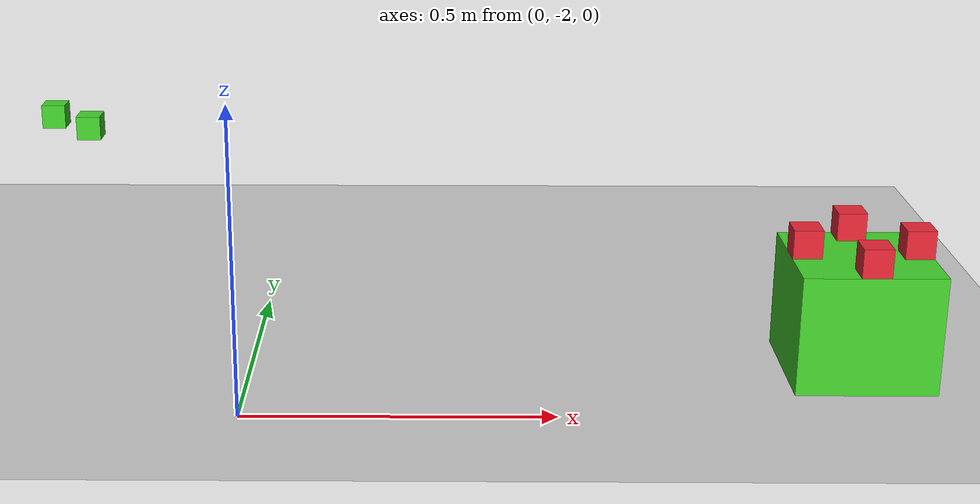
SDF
<sdf version="1.5">
 <world name="default">
  <model name="ground_plane">
   <static>1</static>
   <link name="link">
    <collision name="collision">
     <geometry><plane><normal>0 0 1</normal><size>100 100</size></plane></geometry>
     <surface><friction><ode><mu>100</mu><mu2>50</mu2></ode></friction></surface>
    </collision>
    <visual name="visual">
     <cast_shadows>0</cast_shadows>
     <geometry><plane><normal>0 0 1</normal><size>100 100</size></plane></geometry>
     <material>
      <script><uri>file://media/materials/scripts/gazebo.material</uri><name>Gazebo/Grey</name></script>
     </material>
    </visual>
   </link>
  </model>
  <model name="green_climate">
   <link name="link_0">
    <inertial>
     <mass>3</mass>
     <inertia>
      <ixx>0.166667</ixx>
      <ixy>0</ixy>
      <ixz>0</ixz>
      <iyy>0.166667</iyy>
      <iyz>0</iyz>
      <izz>0.166667</izz>
     </inertia>
    </inertial>
    <visual name="visual">
     <geometry><box><size>0.23 0.23 0.2</size></box></geometry>
     <material>
      <lighting>1</lighting>
      <script><uri>file://media/materials/scripts/gazebo.material</uri><name>Gazebo/Grey</name></script>
      <ambient>0.266 0.84 0.172 1</ambient>
      <diffuse>0.266 0.84 0.172 1</diffuse>
      <specular>0.266 0.84 0.172 1</specular>
      <emissive>0 0 0 1</emissive>
      <shader type="vertex"><normal_map>__default__</normal_map></shader>
     </material>
    </visual>
    <collision name="collision">
     <geometry><box><size>0.23 0.23 0.2</size></box></geometry>
     <surface>
      <friction>
       <ode><mu>1</mu><mu2>1</mu2><fdir1>0 0 0</fdir1><slip1>0</slip1><slip2>0</slip2></ode>
       <torsional>
        <coefficient>1</coefficient>
        <patch_radius>0</patch_radius>
        <surface_radius>0</surface_radius>
        <use_patch_radius>1</use_patch_radius>
        <ode><slip>0</slip></ode>
       </torsional>
      </friction>
      <bounce><restitution_coefficient>0.3</restitution_coefficient><threshold>1e+06</threshold></bounce>
      <contact>
       <collide_without_contact>0</collide_without_contact>
       <collide_without_contact_bitmask>1</collide_without_contact_bitmask>
       <collide_bitmask>1</collide_bitmask>
       <ode>
        <soft_cfm>0</soft_cfm>
        <soft_erp>0.2</soft_erp>
        <kp>1e+13</kp>
        <kd>1</kd>
        <max_vel>0.01</max_vel>
        <min_depth>0</min_depth>
       </ode>
       <bullet>
        <split_impulse>1</split_impulse>
        <split_impulse_penetration_threshold>-0.01</split_impulse_penetration_threshold>
        <soft_cfm>0</soft_cfm>
        <soft_erp>0.2</soft_erp>
        <kp>1e+13</kp>
        <kd>1</kd>
       </bullet>
      </contact>
     </surface>
    </collision>
   </link>
   <static>0</static>
   <pose>0.999998 -1.8 0.09991 -1e-06 4e-06 0</pose>
  </model>
  <model name="red_plant">
   <link name="link_0">
    <inertial>
     <mass>0.03</mass>
     <inertia>
      <ixx>0.166667</ixx>
      <ixy>0</ixy>
      <ixz>0</ixz>
      <iyy>0.166667</iyy>
      <iyz>0</iyz>
      <izz>0.166667</izz>
     </inertia>
    </inertial>
    <visual name="visual">
     <geometry><box><size>0.048 0.048 0.048</size></box></geometry>
     <material>
      <lighting>1</lighting>
      <script><uri>file://media/materials/scripts/gazebo.material</uri><name>Gazebo/Grey</name></script>
      <ambient>0.933 0.153 0.216 1</ambient>
      <diffuse>0.933 0.153 0.216 1</diffuse>
      <specular>0.933 0.153 0.216 1</specular>
      <emissive>0 0 0 1</emissive>
      <shader type="vertex"><normal_map>__default__</normal_map></shader>
     </material>
    </visual>
    <collision name="collision">
     <geometry><box><size>0.048 0.048 0.048</size></box></geometry>
     <surface>
      <friction>
       <ode><mu>1</mu><mu2>1</mu2><fdir1>0 0 0</fdir1><slip1>0</slip1><slip2>0</slip2></ode>
       <torsional>
        <coefficient>1</coefficient>
        <patch_radius>0</patch_radius>
        <surface_radius>0</surface_radius>
        <use_patch_radius>1</use_patch_radius>
        <ode><slip>0</slip></ode>
       </torsional>
      </friction>
      <bounce><restitution_coefficient>0.3</restitution_coefficient><threshold>1e+06</threshold></bounce>
      <contact>
       <collide_without_contact>0</collide_without_contact>
       <collide_without_contact_bitmask>1</collide_without_contact_bitmask>
       <collide_bitmask>1</collide_bitmask>
       <ode>
        <soft_cfm>0</soft_cfm>
        <soft_erp>0.2</soft_erp>
        <kp>1e+13</kp>
        <kd>1</kd>
        <max_vel>0.01</max_vel>
        <min_depth>0</min_depth>
       </ode>
       <bullet>
        <split_impulse>1</split_impulse>
        <split_impulse_penetration_threshold>-0.01</split_impulse_penetration_threshold>
        <soft_cfm>0</soft_cfm>
        <soft_erp>0.2</soft_erp>
        <kp>1e+13</kp>
        <kd>1</kd>
       </bullet>
      </contact>
     </surface>
    </collision>
   </link>
   <static>0</static>
   <pose>1.00019 -1.8908 0.224 7e-06 -1.3e-05 0.002153</pose>
  </model>
  <model name="red_plant_0">
   <link name="link_0">
    <inertial>
     <mass>0.03</mass>
     <inertia>
      <ixx>0.166667</ixx>
      <ixy>0</ixy>
      <ixz>0</ixz>
      <iyy>0.166667</iyy>
      <iyz>0</iyz>
      <izz>0.166667</izz>
     </inertia>
    </inertial>
    <visual name="visual">
     <geometry><box><size>0.048 0.048 0.048</size></box></geometry>
     <material>
      <lighting>1</lighting>
      <script><uri>file://media/materials/scripts/gazebo.material</uri><name>Gazebo/Grey</name></script>
      <ambient>0.933 0.153 0.216 1</ambient>
      <diffuse>0.933 0.153 0.216 1</diffuse>
      <specular>0.933 0.153 0.216 1</specular>
      <emissive>0 0 0 1</emissive>
      <shader type="vertex"><normal_map>__default__</normal_map></shader>
     </material>
    </visual>
    <collision name="collision">
     <geometry><box><size>0.048 0.048 0.048</size></box></geometry>
     <surface>
      <friction>
       <ode><mu>1</mu><mu2>1</mu2><fdir1>0 0 0</fdir1><slip1>0</slip1><slip2>0</slip2></ode>
       <torsional>
        <coefficient>1</coefficient>
        <patch_radius>0</patch_radius>
        <surface_radius>0</surface_radius>
        <use_patch_radius>1</use_patch_radius>
        <ode><slip>0</slip></ode>
       </torsional>
      </friction>
      <bounce><restitution_coefficient>0.3</restitution_coefficient><threshold>1e+06</threshold></bounce>
      <contact>
       <collide_without_contact>0</collide_without_contact>
       <collide_without_contact_bitmask>1</collide_without_contact_bitmask>
       <collide_bitmask>1</collide_bitmask>
       <ode>
        <soft_cfm>0</soft_cfm>
        <soft_erp>0.2</soft_erp>
        <kp>1e+13</kp>
        <kd>1</kd>
        <max_vel>0.01</max_vel>
        <min_depth>0</min_depth>
       </ode>
       <bullet>
        <split_impulse>1</split_impulse>
        <split_impulse_penetration_threshold>-0.01</split_impulse_penetration_threshold>
        <soft_cfm>0</soft_cfm>
        <soft_erp>0.2</soft_erp>
        <kp>1e+13</kp>
        <kd>1</kd>
       </bullet>
      </contact>
     </surface>
    </collision>
   </link>
   <static>0</static>
   <pose>0.999933 -1.70906 0.224005 4.2e-05 0.000157 0.001892</pose>
  </model>
  <model name="red_plant_1">
   <link name="link_0">
    <inertial>
     <mass>0.03</mass>
     <inertia>
      <ixx>0.166667</ixx>
      <ixy>0</ixy>
      <ixz>0</ixz>
      <iyy>0.166667</iyy>
      <iyz>0</iyz>
      <izz>0.166667</izz>
     </inertia>
    </inertial>
    <visual name="visual">
     <geometry><box><size>0.048 0.048 0.048</size></box></geometry>
     <material>
      <lighting>1</lighting>
      <script><uri>file://media/materials/scripts/gazebo.material</uri><name>Gazebo/Grey</name></script>
      <ambient>0.933 0.153 0.216 1</ambient>
      <diffuse>0.933 0.153 0.216 1</diffuse>
      <specular>0.933 0.153 0.216 1</specular>
      <emissive>0 0 0 1</emissive>
      <shader type="vertex"><normal_map>__default__</normal_map></shader>
     </material>
    </visual>
    <collision name="collision">
     <geometry><box><size>0.048 0.048 0.048</size></box></geometry>
     <surface>
      <friction>
       <ode><mu>1</mu><mu2>1</mu2><fdir1>0 0 0</fdir1><slip1>0</slip1><slip2>0</slip2></ode>
       <torsional>
        <coefficient>1</coefficient>
        <patch_radius>0</patch_radius>
        <surface_radius>0</surface_radius>
        <use_patch_radius>1</use_patch_radius>
        <ode><slip>0</slip></ode>
       </torsional>
      </friction>
      <bounce><restitution_coefficient>0.3</restitution_coefficient><threshold>1e+06</threshold></bounce>
      <contact>
       <collide_without_contact>0</collide_without_contact>
       <collide_without_contact_bitmask>1</collide_without_contact_bitmask>
       <collide_bitmask>1</collide_bitmask>
       <ode>
        <soft_cfm>0</soft_cfm>
        <soft_erp>0.2</soft_erp>
        <kp>1e+13</kp>
        <kd>1</kd>
        <max_vel>0.01</max_vel>
        <min_depth>0</min_depth>
       </ode>
       <bullet>
        <split_impulse>1</split_impulse>
        <split_impulse_penetration_threshold>-0.01</split_impulse_penetration_threshold>
        <soft_cfm>0</soft_cfm>
        <soft_erp>0.2</soft_erp>
        <kp>1e+13</kp>
        <kd>1</kd>
       </bullet>
      </contact>
     </surface>
    </collision>
   </link>
   <static>0</static>
   <pose>0.909196 -1.79989 0.224002 3.7e-05 6.5e-05 -0.001428</pose>
  </model>
  <model name="red_plant_2">
   <link name="link_0">
    <inertial>
     <mass>0.03</mass>
     <inertia>
      <ixx>0.166667</ixx>
      <ixy>0</ixy>
      <ixz>0</ixz>
      <iyy>0.166667</iyy>
      <iyz>0</iyz>
      <izz>0.166667</izz>
     </inertia>
    </inertial>
    <visual name="visual">
     <geometry><box><size>0.048 0.048 0.048</size></box></geometry>
     <material>
      <lighting>1</lighting>
      <script><uri>file://media/materials/scripts/gazebo.material</uri><name>Gazebo/Grey</name></script>
      <ambient>0.933 0.153 0.216 1</ambient>
      <diffuse>0.933 0.153 0.216 1</diffuse>
      <specular>0.933 0.153 0.216 1</specular>
      <emissive>0 0 0 1</emissive>
      <shader type="vertex"><normal_map>__default__</normal_map></shader>
     </material>
    </visual>
    <collision name="collision">
     <geometry><box><size>0.048 0.048 0.048</size></box></geometry>
     <surface>
      <friction>
       <ode><mu>1</mu><mu2>1</mu2><fdir1>0 0 0</fdir1><slip1>0</slip1><slip2>0</slip2></ode>
       <torsional>
        <coefficient>1</coefficient>
        <patch_radius>0</patch_radius>
        <surface_radius>0</surface_radius>
        <use_patch_radius>1</use_patch_radius>
        <ode><slip>0</slip></ode>
       </torsional>
      </friction>
      <bounce><restitution_coefficient>0.3</restitution_coefficient><threshold>1e+06</threshold></bounce>
      <contact>
       <collide_without_contact>0</collide_without_contact>
       <collide_without_contact_bitmask>1</collide_without_contact_bitmask>
       <collide_bitmask>1</collide_bitmask>
       <ode>
        <soft_cfm>0</soft_cfm>
        <soft_erp>0.2</soft_erp>
        <kp>1e+13</kp>
        <kd>1</kd>
        <max_vel>0.01</max_vel>
        <min_depth>0</min_depth>
       </ode>
       <bullet>
        <split_impulse>1</split_impulse>
        <split_impulse_penetration_threshold>-0.01</split_impulse_penetration_threshold>
        <soft_cfm>0</soft_cfm>
        <soft_erp>0.2</soft_erp>
        <kp>1e+13</kp>
        <kd>1</kd>
       </bullet>
      </contact>
     </surface>
    </collision>
   </link>
   <static>0</static>
   <pose>1.09097 -1.80005 0.223907 -0.000137 0.000173 0.003373</pose>
  </model>
  <model name="green_plant">
   <link name="link_0">
    <inertial>
     <mass>0.03</mass>
     <inertia>
      <ixx>0.166667</ixx>
      <ixy>0</ixy>
      <ixz>0</ixz>
      <iyy>0.166667</iyy>
      <iyz>0</iyz>
      <izz>0.166667</izz>
     </inertia>
    </inertial>
    <visual name="visual">
     <geometry><box><size>0.048 0.048 0.048</size></box></geometry>
     <material>
      <lighting>1</lighting>
      <script><uri>file://media/materials/scripts/gazebo.material</uri><name>Gazebo/Grey</name></script>
      <ambient>0.266 0.84 0.172 1</ambient>
      <diffuse>0.266 0.84 0.172 1</diffuse>
      <specular>0.266 0.84 0.172 1</specular>
      <emissive>0 0 0 1</emissive>
      <shader type="vertex"><normal_map>__default__</normal_map></shader>
     </material>
    </visual>
    <collision name="collision">
     <geometry><box><size>0.048 0.048 0.048</size></box></geometry>
     <surface>
      <friction>
       <ode><mu>1</mu><mu2>1</mu2><fdir1>0 0 0</fdir1><slip1>0</slip1><slip2>0</slip2></ode>
       <torsional>
        <coefficient>1</coefficient>
        <patch_radius>0</patch_radius>
        <surface_radius>0</surface_radius>
        <use_patch_radius>1</use_patch_radius>
        <ode><slip>0</slip></ode>
       </torsional>
      </friction>
      <bounce><restitution_coefficient>0.3</restitution_coefficient><threshold>1e+06</threshold></bounce>
      <contact>
       <collide_without_contact>0</collide_without_contact>
       <collide_without_contact_bitmask>1</collide_without_contact_bitmask>
       <collide_bitmask>1</collide_bitmask>
       <ode>
        <soft_cfm>0</soft_cfm>
        <soft_erp>0.2</soft_erp>
        <kp>1e+13</kp>
        <kd>1</kd>
        <max_vel>0.01</max_vel>
        <min_depth>0</min_depth>
       </ode>
       <bullet>
        <split_impulse>1</split_impulse>
        <split_impulse_penetration_threshold>-0.01</split_impulse_penetration_threshold>
        <soft_cfm>0</soft_cfm>
        <soft_erp>0.2</soft_erp>
        <kp>1e+13</kp>
        <kd>1</kd>
       </bullet>
      </contact>
     </surface>
    </collision>
   </link>
   <static>0</static>
   <pose>-0.490802 -1.00013 0.224001 -2e-06 2e-05 0.000753</pose>
  </model>
  <model name="green_plant_2">
   <link name="link_0">
    <inertial>
     <mass>0.03</mass>
     <inertia>
      <ixx>0.166667</ixx>
      <ixy>0</ixy>
      <ixz>0</ixz>
      <iyy>0.166667</iyy>
      <iyz>0</iyz>
      <izz>0.166667</izz>
     </inertia>
    </inertial>
    <visual name="visual">
     <geometry><box><size>0.048 0.048 0.048</size></box></geometry>
     <material>
      <lighting>1</lighting>
      <script><uri>file://media/materials/scripts/gazebo.material</uri><name>Gazebo/Grey</name></script>
      <ambient>0.266 0.84 0.172 1</ambient>
      <diffuse>0.266 0.84 0.172 1</diffuse>
      <specular>0.266 0.84 0.172 1</specular>
      <emissive>0 0 0 1</emissive>
      <shader type="vertex"><normal_map>__default__</normal_map></shader>
     </material>
    </visual>
    <collision name="collision">
     <geometry><box><size>0.048 0.048 0.048</size></box></geometry>
     <surface>
      <friction>
       <ode><mu>1</mu><mu2>1</mu2><fdir1>0 0 0</fdir1><slip1>0</slip1><slip2>0</slip2></ode>
       <torsional>
        <coefficient>1</coefficient>
        <patch_radius>0</patch_radius>
        <surface_radius>0</surface_radius>
        <use_patch_radius>1</use_patch_radius>
        <ode><slip>0</slip></ode>
       </torsional>
      </friction>
      <bounce><restitution_coefficient>0.3</restitution_coefficient><threshold>1e+06</threshold></bounce>
      <contact>
       <collide_without_contact>0</collide_without_contact>
       <collide_without_contact_bitmask>1</collide_without_contact_bitmask>
       <collide_bitmask>1</collide_bitmask>
       <ode>
        <soft_cfm>0</soft_cfm>
        <soft_erp>0.2</soft_erp>
        <kp>1e+13</kp>
        <kd>1</kd>
        <max_vel>0.01</max_vel>
        <min_depth>0</min_depth>
       </ode>
       <bullet>
        <split_impulse>1</split_impulse>
        <split_impulse_penetration_threshold>-0.01</split_impulse_penetration_threshold>
        <soft_cfm>0</soft_cfm>
        <soft_erp>0.2</soft_erp>
        <kp>1e+13</kp>
        <kd>1</kd>
       </bullet>
      </contact>
     </surface>
    </collision>
   </link>
   <static>0</static>
   <pose>-0.400251 -1.09069 0.224002 -7.7e-05 -6e-06 -0.000718</pose>
  </model>
 </world>
</sdf>
